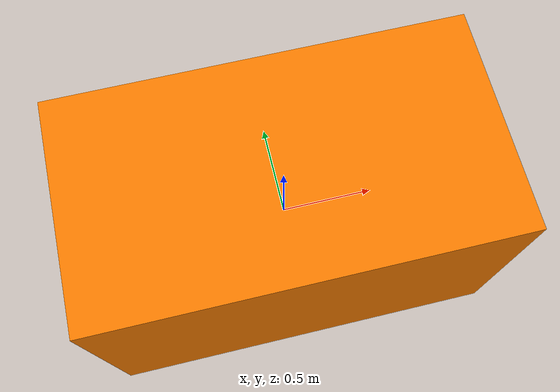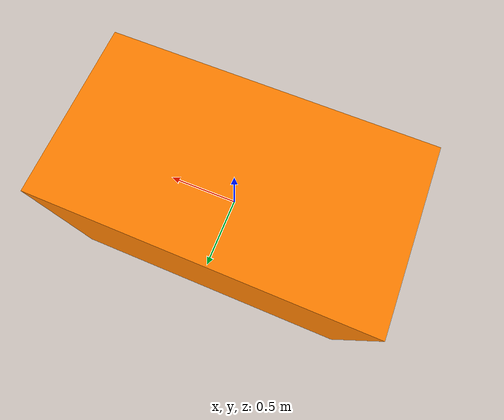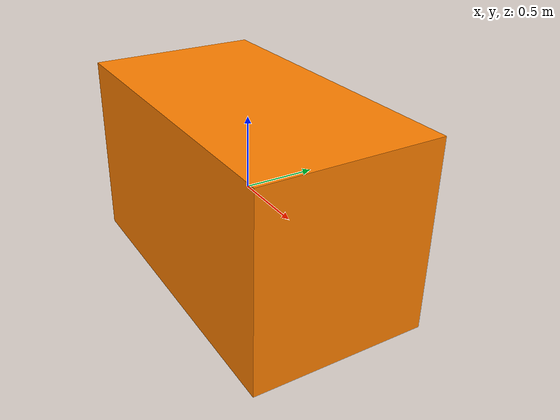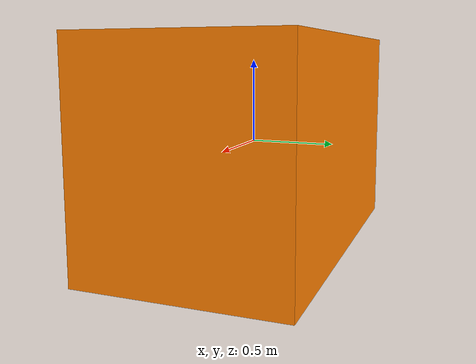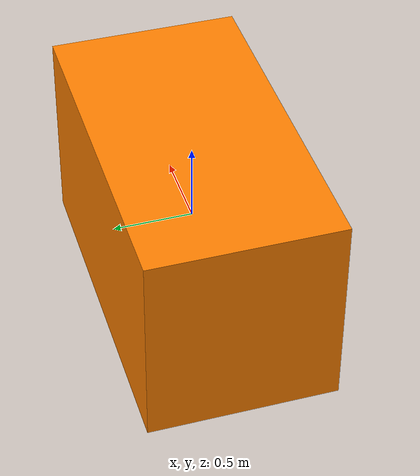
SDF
<?xml version="1.0" ?>
<sdf version='1.6'>
  <model name='CarRealData'>
    <link name="CarLink">
      <pose frame=''>0 0 0 0 0 0</pose>
      <collision name='CarLink_collision'>
        <geometry>
          <box>
            <size>2.2 1.2 1.3</size>
          </box>
        </geometry>
      </collision>
      <visual name='CarLink_visual'>
        <geometry>
          <box>
            <size>2.2 1.2 1.3</size>
          </box>
        </geometry>
        <material>
          <ambient>1.0 0.5019607843137254902 0 1.0</ambient>
        </material>
      </visual>
      <gravity>0</gravity>
      <self_collide>0</self_collide>
    </link>
  </model>
</sdf>
